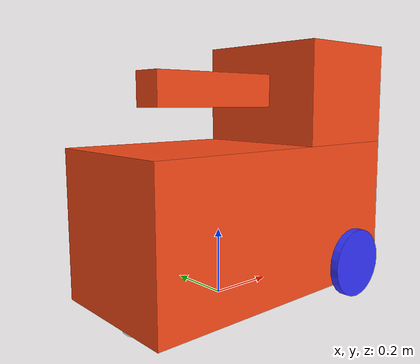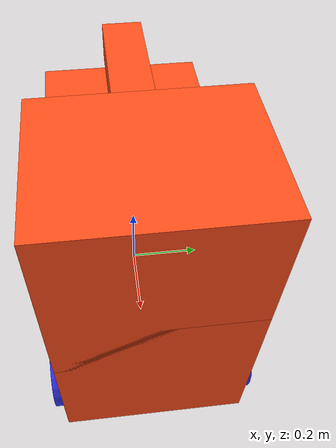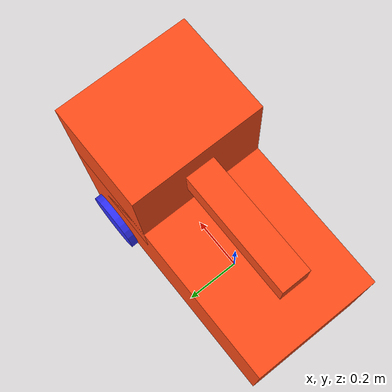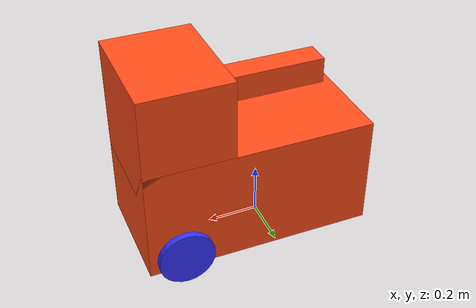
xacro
<?xml version="1.0" ?>
<robot name='robot' xmlns:xacro="http://ros.org/wiki/xacro">

    <xacro:include filename="$(find robot_description)/urdf/gazebo.urdf.xacro" />
    <!--xacro:include filename="$(find robot_description)/urdf/lidar.urdf.xacro" /-->
    <!--xacro:include filename="$(find robot_description)/urdf/depth.urdf.xacro" /-->

    <xacro:property name="chassis_length" value="0.9"/>
    <xacro:property name="chassis_width" value="0.45"/>
    <xacro:property name="chassis_height" value="0.45"/>
    <xacro:property name="wheel_radius" value="0.11"/>
    <xacro:property name="wheel_thickness" value="0.026"/>
    <xacro:property name="wheel_mass" value="0.05"/>
    <xacro:property name="wheel_offset_x" value="0.38"/>
    <xacro:property name="wheel_offset_y" value="0.24"/>
    <xacro:property name="wheel_offset_z" value="0.07"/>
    <xacro:property name="caster_wheel_radius" value="0.04"/>
    <xacro:property name="caster_wheel_mass" value="0.05"/>
    <xacro:property name="caster_wheel_offset_x" value="0.075"/>
    <xacro:property name="caster_wheel_offset_z" value="${wheel_offset_z - wheel_radius + caster_wheel_radius}"/>
    <xacro:property name="mass" value="1.0"/>

    <material name="white">
        <color rgba="1 1 1 1" />
    </material>

    <material name="orange">
        <color rgba="1 0.3 0.1 1"/>
    </material>

    <material name="blue">
        <color rgba="0.2 0.2 1 1"/>
    </material>

    <material name="black">
        <color rgba="0 0 0 1"/>
    </material>

    <material name="red">
        <color rgba="1 0 0 1"/>
    </material>

    <link name="base_link">
    </link>

    <link name="base_footprint">
    </link>

    <joint name="base_footprint_joint" type="fixed">
        <parent link="base_link"/>
        <child link="base_footprint"/>
        <origin xyz="0 0 -0.138" rpy="0 0 0"/>
    </joint>
    -- Нижняя платформа
    <joint name="chassis_joint" type="fixed">
        <parent link="base_link"/>
        <child link="chassis"/>
        <origin xyz="${-wheel_offset_x} 0 0.01"/>
    </joint>

    <link name='chassis'>

    <inertial>
        <origin xyz="${chassis_length/2} 0 ${chassis_height/2}" rpy="0 0 0"/>
        <mass value="${mass}" />
        <inertia ixx="${(1/12) * mass * (chassis_width*chassis_width+chassis_height*chassis_height)}" ixy="0.0" ixz="0.0"
                 iyy="${(1/12) * mass * (chassis_length*chassis_length+chassis_height*chassis_height)}" iyz="0.0"
                 izz="${(1/12) * mass * (chassis_length*chassis_length+chassis_width*chassis_width)}" />
    </inertial>
    <visual>
        <origin xyz="${chassis_length/2} 0 ${chassis_height/2}"/>
        <geometry>
            <box size="${chassis_length} ${chassis_width} ${chassis_height}"/>
        </geometry>
        <material name="orange"/>
    </visual>
    <collision>
        <origin xyz="${chassis_length/2} 0 ${chassis_height/2}"/>
        <geometry>
            <box size="${chassis_length} ${chassis_width} ${chassis_height}"/>
        </geometry>
    </collision>
    </link>

    <gazebo reference="chassis">
        <material>Gazebo/Orange</material>
    </gazebo>

     -- ВВерхняя платформа
     <joint name="chassis_up_joint" type="fixed">
        <parent link="base_link"/>
        <child link="chassis_up"/>
        <origin xyz="-0.105 0 0.32"/>
    </joint>

    <link name='chassis_up'>

    <inertial>
        <origin xyz="${chassis_length/2} 0 ${chassis_height/2}" rpy="0 0 0"/>
        <mass value="0.0000000001" />
        <inertia ixx="${(1/12) * 0.0000000001 * (chassis_width*chassis_width+chassis_height*chassis_height)}" ixy="0.0" ixz="0.0"
                 iyy="${(1/12) * 0.0000000001 * (chassis_length*chassis_length+chassis_height*chassis_height)}" iyz="0.0"
                 izz="${(1/12) * 0.0000000001 * (chassis_length*chassis_length+chassis_width*chassis_width)}" />
    </inertial>
    <visual>
        <origin xyz="${chassis_length/2} 0 ${chassis_height/2}"/>
        <geometry>
            <box size="0.35 0.45 0.45"/>
        </geometry>
        <material name="orange"/>
    </visual>
    <collision>
        <origin xyz="${chassis_length/2} 0 ${chassis_height/2}"/>
        <geometry>
            <box size="0.2 0.2 0.2"/>
        </geometry>
    </collision>
    </link>

    <gazebo reference="chassis_up">
        <material>Gazebo/Orange</material>
    </gazebo>

    --дуло

    <joint name="chassis_up_joint_d" type="fixed">
    <parent link="base_link"/>
    <child link="chassis_up_d"/>
    <origin xyz="-0.4 0 0.4"/>
  </joint>
  <link name="chassis_up_d">
    <inertial>
      <origin rpy="0 0 0" xyz="0.1 0 0.1"/>
      <mass value="0.0000000001"/>
      <inertia ixx="${(1/12) * 0.0000000001 * (chassis_width*chassis_width+chassis_height*chassis_height)}" ixy="0.0" ixz="0.0"
                 iyy="${(1/12) * 0.0000000001 * (chassis_length*chassis_length+chassis_height*chassis_height)}" iyz="0.0"
                 izz="${(1/12) * 0.0000000001 * (chassis_length*chassis_length+chassis_width*chassis_width)}" />
    </inertial>
    <visual>
      <origin xyz="${chassis_length/2} 0 ${chassis_height/2}"/>
      <geometry>
        <box size="0.6 0.1 0.1"/>
      </geometry>
      <material name="orange"/>
    </visual>
    <collision>
      <origin xyz="${chassis_length/2} 0 ${chassis_height/2}"/>
      <geometry>
        <box size="0.2 0.2 0.2"/>
      </geometry>
    </collision>
  </link>
  <gazebo reference="chassis_up_d">
    <material>Gazebo/Orange</material>
  </gazebo>

    <joint name="left_wheel_joint" type="continuous">
        <parent link="base_link"/>
        <child link="left_wheel"/>
        <origin xyz="${wheel_offset_x} ${wheel_offset_y} ${wheel_offset_z}" rpy="-${pi/2} 0 0" />
        <axis xyz="0 0 1"/>
    </joint>

    <link name="left_wheel">
        <visual>
            <geometry>
                <cylinder radius="${wheel_radius}" length="${wheel_thickness}"/>
            </geometry>
            <material name="blue"/>
        </visual>
        <collision>
            <geometry>
                <sphere radius="${wheel_radius}"/>
            </geometry>
        </collision>
        <inertial>
            <origin xyz="0 0 0" rpy="0 0 0"/>
            <mass value="${wheel_mass}" />
            <inertia ixx="${(1/12) * wheel_mass * (3*wheel_radius*wheel_radius + wheel_thickness*wheel_thickness)}" ixy="0.0" ixz="0.0"
                     iyy="${(1/12) * wheel_mass * (3*wheel_radius*wheel_radius + wheel_thickness*wheel_thickness)}" iyz="0.0"
                     izz="${(1/2) * wheel_mass * (wheel_radius*wheel_radius)}" />
        </inertial>
    </link>

    <gazebo reference="left_wheel">
        <material>Gazebo/Blue</material>
    </gazebo>

    <joint name="right_wheel_joint" type="continuous">
        <parent link="base_link"/>
        <child link="right_wheel"/>
        <origin xyz="${wheel_offset_x} ${-wheel_offset_y} ${wheel_offset_z}" rpy="${pi/2} 0 0" />
        <axis xyz="0 0 -1"/>
    </joint>

    <link name="right_wheel">
        <visual>
            <geometry>
                <cylinder radius="${wheel_radius}" length="${wheel_thickness}"/>
            </geometry>
            <material name="blue"/>
        </visual>
        <collision>
            <geometry>
                <sphere radius="${wheel_radius}"/>
            </geometry>
        </collision>
        <inertial>
            <origin xyz="0 0 0" rpy="0 0 0"/>
            <mass value="${wheel_mass}" />
            <inertia ixx="${(1/12) * wheel_mass * (3*wheel_radius*wheel_radius + wheel_thickness*wheel_thickness)}" ixy="0.0" ixz="0.0"
                     iyy="${(1/12) * wheel_mass * (3*wheel_radius*wheel_radius + wheel_thickness*wheel_thickness)}" iyz="0.0"
                     izz="${(1/2) * wheel_mass * (wheel_radius*wheel_radius)}" />
        </inertial>
    </link>

    <gazebo reference="right_wheel">
        <material>Gazebo/Blue</material>
    </gazebo>

    <joint name="caster_wheel_joint" type="fixed">
        <parent link="chassis"/>
        <child link="caster_wheel"/>
        <origin xyz="${caster_wheel_offset_x} 0 -0.02"/>
    </joint>

    <link name="caster_wheel">
    <visual>
        <geometry>
            <sphere radius="${caster_wheel_radius}"/>
        </geometry>
        <material name="white"/>
    </visual>
    <collision>
        <geometry>
            <sphere radius="${caster_wheel_radius}"/>
        </geometry>
    </collision>

    <inertial>
        <origin xyz="0 0 0" rpy="0 0 0"/>
        <mass value="${caster_wheel_mass}" />
        <inertia ixx="${(2/5) * caster_wheel_mass * (caster_wheel_radius*caster_wheel_radius)}" ixy="0.0" ixz="0.0"
                 iyy="${(2/5) * caster_wheel_mass * (caster_wheel_radius*caster_wheel_radius)}" iyz="0.0"
                 izz="${(2/5) * caster_wheel_mass * (caster_wheel_radius*caster_wheel_radius)}" />
    </inertial>
    </link>

    <gazebo reference="caster_wheel">
        <material>Gazebo/White</material>
        <mu1 value="0.001"/>
        <mu2 value="0.001"/>
    </gazebo>

</robot>
